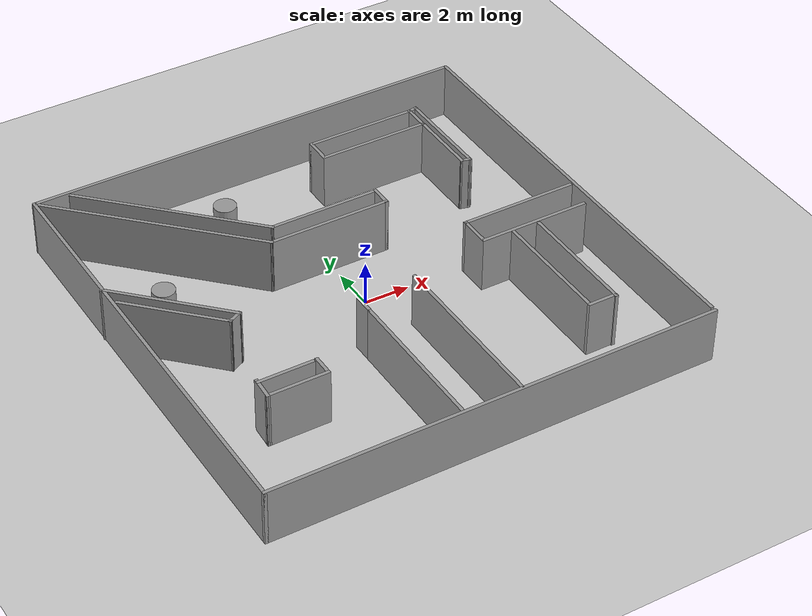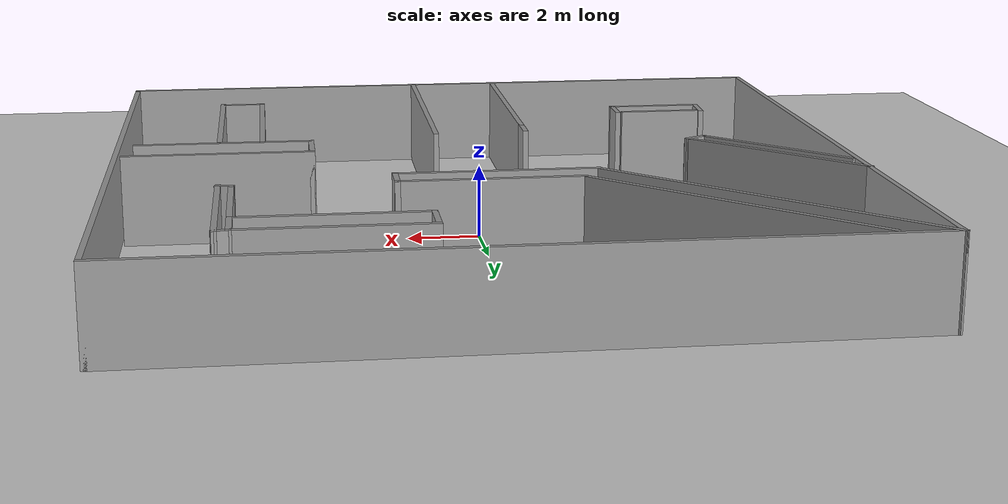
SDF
<sdf version="1.7">
 <world name="default">
  <light name="sun" type="directional">
   <pose>0 0 10 0 -0 0</pose>
   <diffuse>0.8 0.8 0.8 1</diffuse>
   <specular>0.2 0.2 0.2 1</specular>
   <attenuation>
    <range>1000</range>
    <constant>0.9</constant>
    <linear>0.01</linear>
    <quadratic>0.001</quadratic>
   </attenuation>
   <direction>-0.5 0.1 -0.9</direction>
   <spot><inner_angle>0</inner_angle><outer_angle>0</outer_angle><falloff>0</falloff></spot>
  </light>
  <model name="ground_plane">
   <static>1</static>
   <link name="link">
    <collision name="collision">
     <geometry><plane><normal>0 0 1</normal><size>100 100</size></plane></geometry>
     <surface><friction><ode><mu>100</mu><mu2>50</mu2></ode></friction></surface>
    </collision>
    <visual name="visual">
     <cast_shadows>0</cast_shadows>
     <geometry><plane><normal>0 0 1</normal><size>100 100</size></plane></geometry>
     <material>
      <script><uri>file://media/materials/scripts/gazebo.material</uri><name>Gazebo/Grey</name></script>
     </material>
    </visual>
   </link>
  </model>
  <gravity>0 0 -9.8</gravity>
  <magnetic_field>6e-06 2.3e-05 -4.2e-05</magnetic_field>
  <atmosphere type="adiabatic"/>
  <physics type="ode">
   <max_step_size>0.001</max_step_size>
   <real_time_factor>1</real_time_factor>
   <real_time_update_rate>1000</real_time_update_rate>
  </physics>
  <scene><ambient>0.4 0.4 0.4 1</ambient><background>0.7 0.7 0.7 1</background><shadows>1</shadows></scene>
  <audio><device>default</device></audio>
  <spherical_coordinates>
   <surface_model>EARTH_WGS84</surface_model>
   <latitude_deg>0</latitude_deg>
   <longitude_deg>0</longitude_deg>
   <elevation>0</elevation>
   <heading_deg>0</heading_deg>
  </spherical_coordinates>
  <model name="test4">
   <pose>-0.066632 -0.01829 0 0 -0 0</pose>
   <link name="Wall_0">
    <collision name="Wall_0_Collision">
     <geometry><box><size>20 0.15 2.5</size></box></geometry>
     <pose>0 0 1.25 0 -0 0</pose>
    </collision>
    <visual name="Wall_0_Visual">
     <pose>0 0 1.25 0 -0 0</pose>
     <geometry><box><size>20 0.15 2.5</size></box></geometry>
     <material>
      <script><uri>file://media/materials/scripts/gazebo.material</uri><name>Gazebo/Grey</name></script>
      <ambient>1 1 1 1</ambient>
     </material>
     <meta><layer>0</layer></meta>
    </visual>
    <pose>0.028371 -9.81553 0 0 -0 0</pose>
   </link>
   <link name="Wall_11">
    <collision name="Wall_11_Collision">
     <geometry><box><size>5.5 0.15 2.5</size></box></geometry>
     <pose>0 0 1.25 0 -0 0</pose>
    </collision>
    <visual name="Wall_11_Visual">
     <pose>0 0 1.25 0 -0 0</pose>
     <geometry><box><size>5.5 0.15 2.5</size></box></geometry>
     <material>
      <script><uri>file://media/materials/scripts/gazebo.material</uri><name>Gazebo/Grey</name></script>
      <ambient>1 1 1 1</ambient>
     </material>
     <meta><layer>0</layer></meta>
    </visual>
    <pose>-0.07985 2.64269 0 0 -0 0</pose>
   </link>
   <link name="Wall_12">
    <collision name="Wall_12_Collision">
     <geometry><box><size>1 0.15 2.5</size></box></geometry>
     <pose>0 0 1.25 0 -0 0</pose>
    </collision>
    <visual name="Wall_12_Visual">
     <pose>0 0 1.25 0 -0 0</pose>
     <geometry><box><size>1 0.15 2.5</size></box></geometry>
     <material>
      <script><uri>file://media/materials/scripts/gazebo.material</uri><name>Gazebo/Grey</name></script>
      <ambient>1 1 1 1</ambient>
     </material>
     <meta><layer>0</layer></meta>
    </visual>
    <pose>2.59515 3.06769 0 0 -0 1.5708</pose>
   </link>
   <link name="Wall_13">
    <collision name="Wall_13_Collision">
     <geometry><box><size>5 0.15 2.5</size></box></geometry>
     <pose>0 0 1.25 0 -0 0</pose>
    </collision>
    <visual name="Wall_13_Visual">
     <pose>0 0 1.25 0 -0 0</pose>
     <geometry><box><size>5 0.15 2.5</size></box></geometry>
     <material>
      <script><uri>file://media/materials/scripts/gazebo.material</uri><name>Gazebo/Grey</name></script>
      <ambient>1 1 1 1</ambient>
     </material>
     <meta><layer>0</layer></meta>
    </visual>
    <pose>0.17015 3.49269 0 0 -0 3.14159</pose>
   </link>
   <link name="Wall_14">
    <collision name="Wall_14_Collision">
     <geometry><box><size>8.75 0.15 2.5</size></box></geometry>
     <pose>0 0 1.25 0 -0 0</pose>
    </collision>
    <visual name="Wall_14_Visual">
     <pose>0 0 1.25 0 -0 0</pose>
     <geometry><box><size>8.75 0.15 2.5</size></box></geometry>
     <material>
      <script><uri>file://media/materials/scripts/gazebo.material</uri><name>Gazebo/Grey</name></script>
      <ambient>1 1 1 1</ambient>
     </material>
     <meta><layer>0</layer></meta>
    </visual>
    <pose>-5.29541 6.53325 0 0 -0 2.35619</pose>
   </link>
   <link name="Wall_16">
    <collision name="Wall_16_Collision">
     <geometry><box><size>4.75 0.15 2.5</size></box></geometry>
     <pose>0 0 1.25 0 -0 0</pose>
    </collision>
    <visual name="Wall_16_Visual">
     <pose>0 0 1.25 0 -0 0</pose>
     <geometry><box><size>4.75 0.15 2.5</size></box></geometry>
     <material>
      <script><uri>file://media/materials/scripts/gazebo.material</uri><name>Gazebo/Grey</name></script>
      <ambient>1 1 1 1</ambient>
     </material>
     <meta><layer>0</layer></meta>
    </visual>
    <pose>-8.10986 0.745096 0 0 -0 -0.785398</pose>
   </link>
   <link name="Wall_17">
    <collision name="Wall_17_Collision">
     <geometry><box><size>0.736768 0.15 2.5</size></box></geometry>
     <pose>0 0 1.25 0 -0 0</pose>
    </collision>
    <visual name="Wall_17_Visual">
     <pose>0 0 1.25 0 -0 0</pose>
     <geometry><box><size>0.736768 0.15 2.5</size></box></geometry>
     <material>
      <script><uri>file://media/materials/scripts/gazebo.material</uri><name>Gazebo/Grey</name></script>
      <ambient>1 1 1 1</ambient>
     </material>
     <meta><layer>0</layer></meta>
    </visual>
    <pose>-6.22301 -0.746302 0 0 -0 0.477961</pose>
   </link>
   <link name="Wall_2">
    <collision name="Wall_2_Collision">
     <geometry><box><size>19.75 0.15 2.5</size></box></geometry>
     <pose>0 0 1.25 0 -0 0</pose>
    </collision>
    <visual name="Wall_2_Visual">
     <pose>0 0 1.25 0 -0 0</pose>
     <geometry><box><size>19.75 0.15 2.5</size></box></geometry>
     <material>
      <script><uri>file://media/materials/scripts/gazebo.material</uri><name>Gazebo/Grey</name></script>
      <ambient>1 1 1 1</ambient>
     </material>
     <meta><layer>0</layer></meta>
    </visual>
    <pose>-9.89663 -0.015533 0 0 -0 1.5708</pose>
   </link>
   <link name="Wall_22">
    <collision name="Wall_22_Collision">
     <geometry><box><size>6.75 0.15 2.5</size></box></geometry>
     <pose>0 0 1.25 0 -0 0</pose>
    </collision>
    <visual name="Wall_22_Visual">
     <pose>0 0 1.25 0 -0 0</pose>
     <geometry><box><size>6.75 0.15 2.5</size></box></geometry>
     <material>
      <script><uri>file://media/materials/scripts/gazebo.material</uri><name>Gazebo/Grey</name></script>
      <ambient>1 1 1 1</ambient>
     </material>
     <meta><layer>0</layer></meta>
    </visual>
    <pose>-1.548 -6.37825 0 0 -0 1.5708</pose>
   </link>
   <link name="Wall_23">
    <collision name="Wall_23_Collision">
     <geometry><box><size>1 0.15 2.5</size></box></geometry>
     <pose>0 0 1.25 0 -0 0</pose>
    </collision>
    <visual name="Wall_23_Visual">
     <pose>0 0 1.25 0 -0 0</pose>
     <geometry><box><size>1 0.15 2.5</size></box></geometry>
     <material>
      <script><uri>file://media/materials/scripts/gazebo.material</uri><name>Gazebo/Grey</name></script>
      <ambient>1 1 1 1</ambient>
     </material>
     <meta><layer>0</layer></meta>
    </visual>
    <pose>-1.548 -2.65325 0 0 -0 1.5708</pose>
   </link>
   <link name="Wall_25">
    <collision name="Wall_25_Collision">
     <geometry><box><size>7.75 0.15 2.5</size></box></geometry>
     <pose>0 0 1.25 0 -0 0</pose>
    </collision>
    <visual name="Wall_25_Visual">
     <pose>0 0 1.25 0 -0 0</pose>
     <geometry><box><size>7.75 0.15 2.5</size></box></geometry>
     <material>
      <script><uri>file://media/materials/scripts/gazebo.material</uri><name>Gazebo/Grey</name></script>
      <ambient>1 1 1 1</ambient>
     </material>
     <meta><layer>0</layer></meta>
    </visual>
    <pose>1.05734 -5.924 0 0 -0 -1.5708</pose>
   </link>
   <link name="Wall_27">
    <collision name="Wall_27_Collision">
     <geometry><box><size>5.25 0.15 2.5</size></box></geometry>
     <pose>0 0 1.25 0 -0 0</pose>
    </collision>
    <visual name="Wall_27_Visual">
     <pose>0 0 1.25 0 -0 0</pose>
     <geometry><box><size>5.25 0.15 2.5</size></box></geometry>
     <material>
      <script><uri>file://media/materials/scripts/gazebo.material</uri><name>Gazebo/Grey</name></script>
      <ambient>1 1 1 1</ambient>
     </material>
     <meta><layer>0</layer></meta>
    </visual>
    <pose>7.18968 -0.233897 0 0 -0 0</pose>
   </link>
   <link name="Wall_29">
    <collision name="Wall_29_Collision">
     <geometry><box><size>1.5 0.15 2.5</size></box></geometry>
     <pose>0 0 1.25 0 -0 0</pose>
    </collision>
    <visual name="Wall_29_Visual">
     <pose>0 0 1.25 0 -0 0</pose>
     <geometry><box><size>1.5 0.15 2.5</size></box></geometry>
     <material>
      <script><uri>file://media/materials/scripts/gazebo.material</uri><name>Gazebo/Grey</name></script>
      <ambient>1 1 1 1</ambient>
     </material>
     <meta><layer>0</layer></meta>
    </visual>
    <pose>4.63968 -0.908897 0 0 -0 -1.5708</pose>
   </link>
   <link name="Wall_30">
    <collision name="Wall_30_Collision">
     <geometry><box><size>5 0.15 2.5</size></box></geometry>
     <pose>0 0 1.25 0 -0 0</pose>
    </collision>
    <visual name="Wall_30_Visual">
     <pose>0 0 1.25 0 -0 0</pose>
     <geometry><box><size>5 0.15 2.5</size></box></geometry>
     <material>
      <script><uri>file://media/materials/scripts/gazebo.material</uri><name>Gazebo/Grey</name></script>
      <ambient>1 1 1 1</ambient>
     </material>
     <meta><layer>0</layer></meta>
    </visual>
    <pose>7.06468 -1.5839 0 0 -0 0</pose>
   </link>
   <link name="Wall_33">
    <collision name="Wall_33_Collision">
     <geometry><box><size>1 0.15 2.5</size></box></geometry>
     <pose>0 0 1.25 0 -0 0</pose>
    </collision>
    <visual name="Wall_33_Visual">
     <pose>0 0 1.25 0 -0 0</pose>
     <geometry><box><size>1 0.15 2.5</size></box></geometry>
     <material>
      <script><uri>file://media/materials/scripts/gazebo.material</uri><name>Gazebo/Grey</name></script>
      <ambient>1 1 1 1</ambient>
     </material>
     <meta><layer>0</layer></meta>
    </visual>
    <pose>-4.72311 -4.9391 0 0 -0 -1.5708</pose>
   </link>
   <link name="Wall_34">
    <collision name="Wall_34_Collision">
     <geometry><box><size>2.75 0.15 2.5</size></box></geometry>
     <pose>0 0 1.25 0 -0 0</pose>
    </collision>
    <visual name="Wall_34_Visual">
     <pose>0 0 1.25 0 -0 0</pose>
     <geometry><box><size>2.75 0.15 2.5</size></box></geometry>
     <material>
      <script><uri>file://media/materials/scripts/gazebo.material</uri><name>Gazebo/Grey</name></script>
      <ambient>1 1 1 1</ambient>
     </material>
     <meta><layer>0</layer></meta>
    </visual>
    <pose>-6.02311 -5.3641 0 0 -0 3.14159</pose>
   </link>
   <link name="Wall_35">
    <collision name="Wall_35_Collision">
     <geometry><box><size>1.07684 0.15 2.5</size></box></geometry>
     <pose>0 0 1.25 0 -0 0</pose>
    </collision>
    <visual name="Wall_35_Visual">
     <pose>0 0 1.25 0 -0 0</pose>
     <geometry><box><size>1.07684 0.15 2.5</size></box></geometry>
     <material>
      <script><uri>file://media/materials/scripts/gazebo.material</uri><name>Gazebo/Grey</name></script>
      <ambient>1 1 1 1</ambient>
     </material>
     <meta><layer>0</layer></meta>
    </visual>
    <pose>-7.29985 -4.90126 0 0 -0 1.52058</pose>
   </link>
   <link name="Wall_37">
    <collision name="Wall_37_Collision">
     <geometry><box><size>2.5 0.15 2.5</size></box></geometry>
     <pose>0 0 1.25 0 -0 0</pose>
    </collision>
    <visual name="Wall_37_Visual">
     <pose>0 0 1.25 0 -0 0</pose>
     <geometry><box><size>2.5 0.15 2.5</size></box></geometry>
     <material>
      <script><uri>file://media/materials/scripts/gazebo.material</uri><name>Gazebo/Grey</name></script>
      <ambient>1 1 1 1</ambient>
     </material>
     <meta><layer>0</layer></meta>
    </visual>
    <pose>-6.10159 -4.53148 0 0 -0 0</pose>
   </link>
   <link name="Wall_39">
    <collision name="Wall_39_Collision">
     <geometry><box><size>1.25 0.15 2.5</size></box></geometry>
     <pose>0 0 1.25 0 -0 0</pose>
    </collision>
    <visual name="Wall_39_Visual">
     <pose>0 0 1.25 0 -0 0</pose>
     <geometry><box><size>1.25 0.15 2.5</size></box></geometry>
     <material>
      <script><uri>file://media/materials/scripts/gazebo.material</uri><name>Gazebo/Grey</name></script>
      <ambient>1 1 1 1</ambient>
     </material>
     <meta><layer>0</layer></meta>
    </visual>
    <pose>1.94129 7.12517 0 0 -0 -1.5708</pose>
   </link>
   <link name="Wall_4">
    <collision name="Wall_4_Collision">
     <geometry><box><size>20 0.15 2.5</size></box></geometry>
     <pose>0 0 1.25 0 -0 0</pose>
    </collision>
    <visual name="Wall_4_Visual">
     <pose>0 0 1.25 0 -0 0</pose>
     <geometry><box><size>20 0.15 2.5</size></box></geometry>
     <material>
      <script><uri>file://media/materials/scripts/gazebo.material</uri><name>Gazebo/Grey</name></script>
      <ambient>1 1 1 1</ambient>
     </material>
     <meta><layer>0</layer></meta>
    </visual>
    <pose>0.028371 9.78447 0 0 -0 0</pose>
   </link>
   <link name="Wall_40">
    <collision name="Wall_40_Collision">
     <geometry><box><size>5 0.15 2.5</size></box></geometry>
     <pose>0 0 1.25 0 -0 0</pose>
    </collision>
    <visual name="Wall_40_Visual">
     <pose>0 0 1.25 0 -0 0</pose>
     <geometry><box><size>5 0.15 2.5</size></box></geometry>
     <material>
      <script><uri>file://media/materials/scripts/gazebo.material</uri><name>Gazebo/Grey</name></script>
      <ambient>1 1 1 1</ambient>
     </material>
     <meta><layer>0</layer></meta>
    </visual>
    <pose>4.36629 6.57517 0 0 -0 0</pose>
   </link>
   <link name="Wall_41">
    <collision name="Wall_41_Collision">
     <geometry><box><size>1.25 0.15 2.5</size></box></geometry>
     <pose>0 0 1.25 0 -0 0</pose>
    </collision>
    <visual name="Wall_41_Visual">
     <pose>0 0 1.25 0 -0 0</pose>
     <geometry><box><size>1.25 0.15 2.5</size></box></geometry>
     <material>
      <script><uri>file://media/materials/scripts/gazebo.material</uri><name>Gazebo/Grey</name></script>
      <ambient>1 1 1 1</ambient>
     </material>
     <meta><layer>0</layer></meta>
    </visual>
    <pose>6.79129 7.12517 0 0 -0 1.5708</pose>
   </link>
   <link name="Wall_42">
    <collision name="Wall_42_Collision">
     <geometry><box><size>5 0.15 2.5</size></box></geometry>
     <pose>0 0 1.25 0 -0 0</pose>
    </collision>
    <visual name="Wall_42_Visual">
     <pose>0 0 1.25 0 -0 0</pose>
     <geometry><box><size>5 0.15 2.5</size></box></geometry>
     <material>
      <script><uri>file://media/materials/scripts/gazebo.material</uri><name>Gazebo/Grey</name></script>
      <ambient>1 1 1 1</ambient>
     </material>
     <meta><layer>0</layer></meta>
    </visual>
    <pose>4.36629 7.67517 0 0 -0 3.14159</pose>
   </link>
   <link name="Wall_45">
    <collision name="Wall_45_Collision">
     <geometry><box><size>5.5 0.15 2.5</size></box></geometry>
     <pose>0 0 1.25 0 -0 0</pose>
    </collision>
    <visual name="Wall_45_Visual">
     <pose>0 0 1.25 0 -0 0</pose>
     <geometry><box><size>5.5 0.15 2.5</size></box></geometry>
     <material>
      <script><uri>file://media/materials/scripts/gazebo.material</uri><name>Gazebo/Grey</name></script>
      <ambient>1 1 1 1</ambient>
     </material>
     <meta><layer>0</layer></meta>
    </visual>
    <pose>5.98887 -4.35114 0 0 -0 -1.5708</pose>
   </link>
   <link name="Wall_46">
    <collision name="Wall_46_Collision">
     <geometry><box><size>1.34396 0.15 2.5</size></box></geometry>
     <pose>0 0 1.25 0 -0 0</pose>
    </collision>
    <visual name="Wall_46_Visual">
     <pose>0 0 1.25 0 -0 0</pose>
     <geometry><box><size>1.34396 0.15 2.5</size></box></geometry>
     <material>
      <script><uri>file://media/materials/scripts/gazebo.material</uri><name>Gazebo/Grey</name></script>
      <ambient>1 1 1 1</ambient>
     </material>
     <meta><layer>0</layer></meta>
    </visual>
    <pose>6.5854 -7.07266 0 0 -0 0</pose>
   </link>
   <link name="Wall_47">
    <collision name="Wall_47_Collision">
     <geometry><box><size>5.5 0.15 2.5</size></box></geometry>
     <pose>0 0 1.25 0 -0 0</pose>
    </collision>
    <visual name="Wall_47_Visual">
     <pose>0 0 1.25 0 -0 0</pose>
     <geometry><box><size>5.5 0.15 2.5</size></box></geometry>
     <material>
      <script><uri>file://media/materials/scripts/gazebo.material</uri><name>Gazebo/Grey</name></script>
      <ambient>1 1 1 1</ambient>
     </material>
     <meta><layer>0</layer></meta>
    </visual>
    <pose>7.18192 -4.44419 0 0 -0 1.5708</pose>
   </link>
   <link name="Wall_49">
    <collision name="Wall_49_Collision">
     <geometry><box><size>3.25 0.15 2.5</size></box></geometry>
     <pose>0 0 1.25 0 -0 0</pose>
    </collision>
    <visual name="Wall_49_Visual">
     <pose>0 0 1.25 0 -0 0</pose>
     <geometry><box><size>3.25 0.15 2.5</size></box></geometry>
     <material>
      <script><uri>file://media/materials/scripts/gazebo.material</uri><name>Gazebo/Grey</name></script>
      <ambient>1 1 1 1</ambient>
     </material>
     <meta><layer>0</layer></meta>
    </visual>
    <pose>6.79129 5.02517 0 0 -0 -1.5708</pose>
   </link>
   <link name="Wall_5">
    <collision name="Wall_5_Collision">
     <geometry><box><size>19.5 0.15 2.5</size></box></geometry>
     <pose>0 0 1.25 0 -0 0</pose>
    </collision>
    <visual name="Wall_5_Visual">
     <pose>0 0 1.25 0 -0 0</pose>
     <geometry><box><size>19.5 0.15 2.5</size></box></geometry>
     <material>
      <script><uri>file://media/materials/scripts/gazebo.material</uri><name>Gazebo/Grey</name></script>
      <ambient>1 1 1 1</ambient>
     </material>
     <meta><layer>0</layer></meta>
    </visual>
    <pose>9.95337 0.109467 0 0 -0 -1.5708</pose>
   </link>
   <link name="Wall_50">
    <collision name="Wall_50_Collision">
     <geometry><box><size>0.5 0.15 2.5</size></box></geometry>
     <pose>0 0 1.25 0 -0 0</pose>
    </collision>
    <visual name="Wall_50_Visual">
     <pose>0 0 1.25 0 -0 0</pose>
     <geometry><box><size>0.5 0.15 2.5</size></box></geometry>
     <material>
      <script><uri>file://media/materials/scripts/gazebo.material</uri><name>Gazebo/Grey</name></script>
      <ambient>1 1 1 1</ambient>
     </material>
     <meta><layer>0</layer></meta>
    </visual>
    <pose>6.96033 3.42988 0 0 -0 -0.261799</pose>
   </link>
   <link name="Wall_51">
    <collision name="Wall_51_Collision">
     <geometry><box><size>4.5 0.15 2.5</size></box></geometry>
     <pose>0 0 1.25 0 -0 0</pose>
    </collision>
    <visual name="Wall_51_Visual">
     <pose>0 0 1.25 0 -0 0</pose>
     <geometry><box><size>4.5 0.15 2.5</size></box></geometry>
     <material>
      <script><uri>file://media/materials/scripts/gazebo.material</uri><name>Gazebo/Grey</name></script>
      <ambient>1 1 1 1</ambient>
     </material>
     <meta><layer>0</layer></meta>
    </visual>
    <pose>7.12937 5.55958 0 0 -0 1.5708</pose>
   </link>
   <link name="Wall_52">
    <collision name="Wall_52_Collision">
     <geometry><box><size>0.493255 0.15 2.5</size></box></geometry>
     <pose>0 0 1.25 0 -0 0</pose>
    </collision>
    <visual name="Wall_52_Visual">
     <pose>0 0 1.25 0 -0 0</pose>
     <geometry><box><size>0.493255 0.15 2.5</size></box></geometry>
     <material>
      <script><uri>file://media/materials/scripts/gazebo.material</uri><name>Gazebo/Grey</name></script>
      <ambient>1 1 1 1</ambient>
     </material>
     <meta><layer>0</layer></meta>
    </visual>
    <pose>6.96033 7.70488 0 0 -0 -2.96763</pose>
   </link>
   <link name="Wall_7">
    <collision name="Wall_7_Collision">
     <geometry><box><size>10.25 0.15 2.5</size></box></geometry>
     <pose>0 0 1.25 0 -0 0</pose>
    </collision>
    <visual name="Wall_7_Visual">
     <pose>0 0 1.25 0 -0 0</pose>
     <geometry><box><size>10.25 0.15 2.5</size></box></geometry>
     <material>
      <script><uri>file://media/materials/scripts/gazebo.material</uri><name>Gazebo/Grey</name></script>
      <ambient>1 1 1 1</ambient>
     </material>
     <meta><layer>0</layer></meta>
    </visual>
    <pose>-6.32574 6.21358 0 0 -0 -0.785398</pose>
   </link>
   <link name="Wall_9">
    <collision name="Wall_9_Collision">
     <geometry><box><size>5.75 0.15 2.5</size></box></geometry>
     <pose>0 0 1.25 0 -0 0</pose>
    </collision>
    <visual name="Wall_9_Visual">
     <pose>0 0 1.25 0 -0 0</pose>
     <geometry><box><size>5.75 0.15 2.5</size></box></geometry>
     <material>
      <script><uri>file://media/materials/scripts/gazebo.material</uri><name>Gazebo/Grey</name></script>
      <ambient>1 1 1 1</ambient>
     </material>
     <meta><layer>0</layer></meta>
    </visual>
    <pose>-7.94241 1.36854 0 0 -0 -0.785398</pose>
   </link>
   <static>1</static>
  </model>
  <model name="unit_cylinder">
   <pose>-2.41346 7.49687 0.499993 -3e-06 -4e-06 -0</pose>
   <link name="link">
    <inertial>
     <mass>1</mass>
     <inertia><ixx>0.145833</ixx><ixy>0</ixy><ixz>0</ixz><iyy>0.145833</iyy><iyz>0</iyz><izz>0.125</izz></inertia>
    </inertial>
    <collision name="collision">
     <geometry><cylinder><radius>0.5</radius><length>1</length></cylinder></geometry>
    </collision>
    <visual name="visual">
     <geometry><cylinder><radius>0.5</radius><length>1</length></cylinder></geometry>
     <material>
      <script><name>Gazebo/Grey</name><uri>file://media/materials/scripts/gazebo.material</uri></script>
     </material>
    </visual>
   </link>
  </model>
  <model name="unit_cylinder_0">
   <pose>-7.15298 3.80133 0.499997 3e-06 4e-06 -0</pose>
   <link name="link">
    <inertial>
     <mass>1</mass>
     <inertia><ixx>0.145833</ixx><ixy>0</ixy><ixz>0</ixz><iyy>0.145833</iyy><iyz>0</iyz><izz>0.125</izz></inertia>
    </inertial>
    <collision name="collision">
     <geometry><cylinder><radius>0.5</radius><length>1</length></cylinder></geometry>
    </collision>
    <visual name="visual">
     <geometry><cylinder><radius>0.5</radius><length>1</length></cylinder></geometry>
     <material>
      <script><name>Gazebo/Grey</name><uri>file://media/materials/scripts/gazebo.material</uri></script>
     </material>
    </visual>
   </link>
  </model>
 </world>
</sdf>
